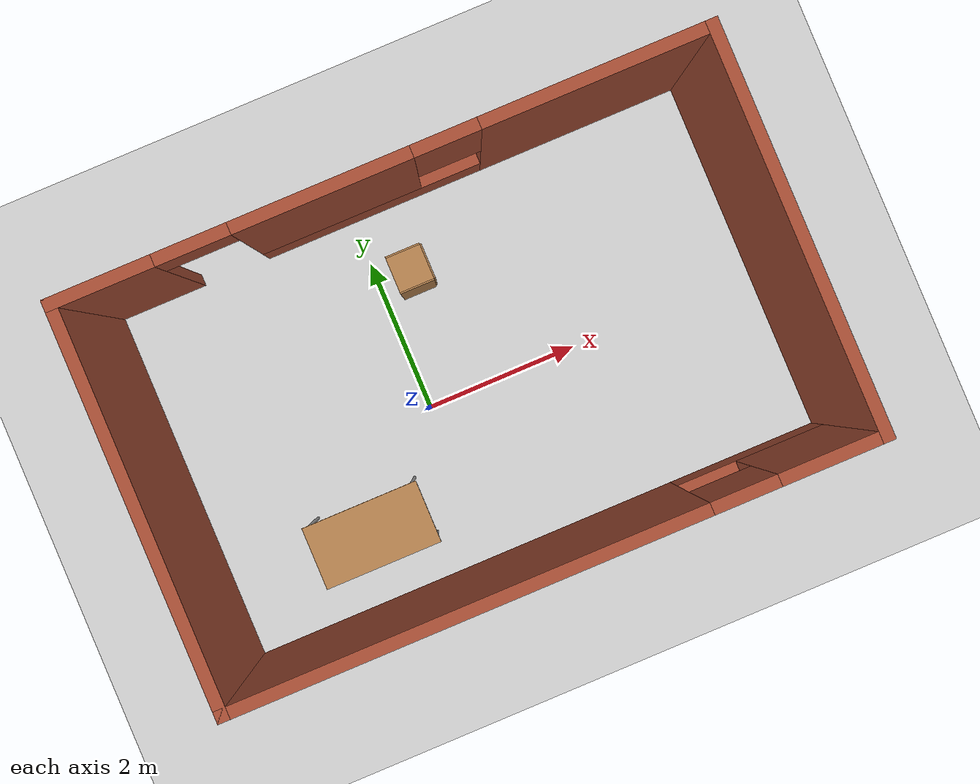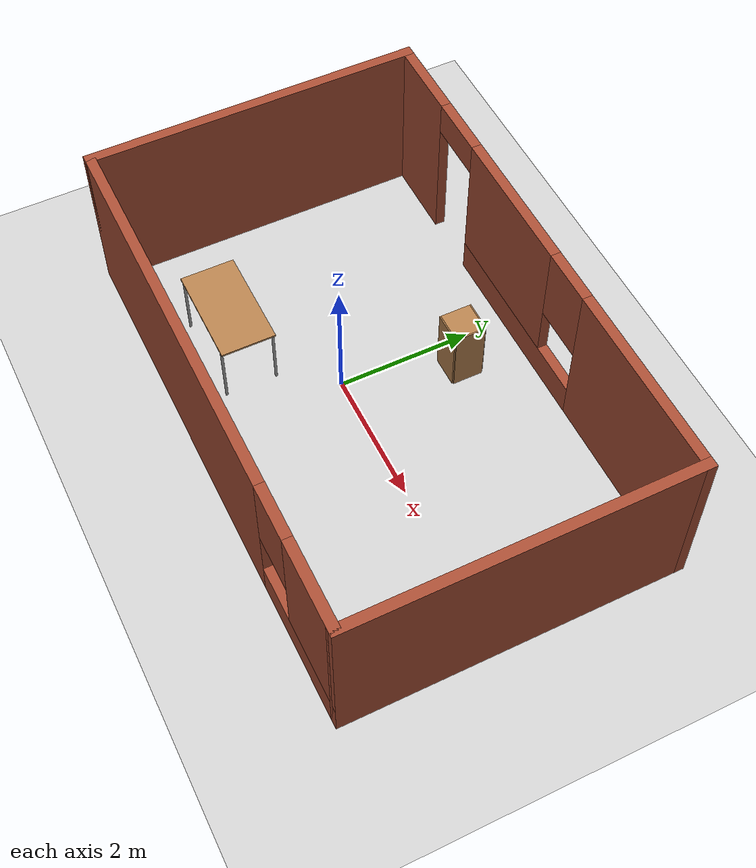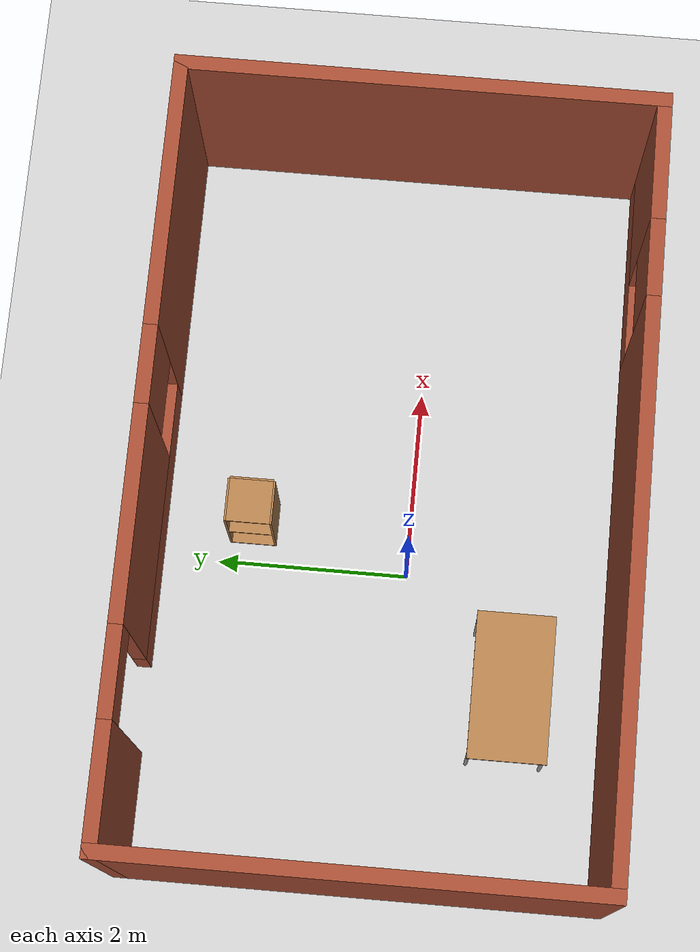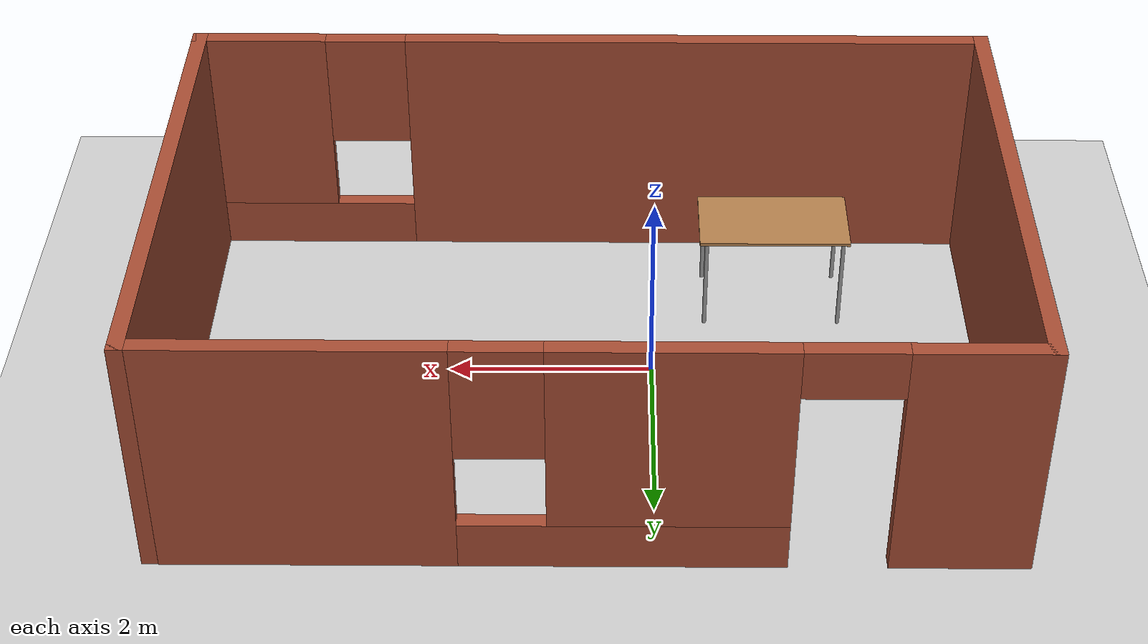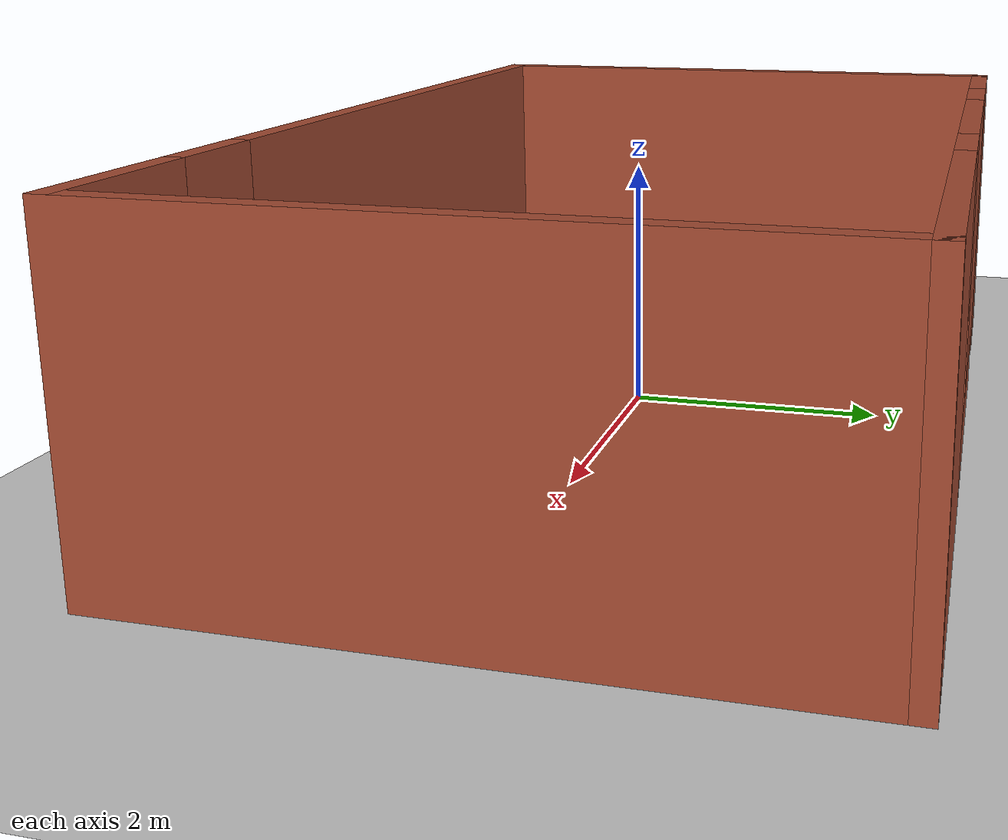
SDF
<sdf version="1.7">
 <world name="default">
  <light name="sun" type="directional">
   <pose>0 0 10 0 -0 0</pose>
   <diffuse>0.8 0.8 0.8 1</diffuse>
   <specular>0.2 0.2 0.2 1</specular>
   <attenuation>
    <range>1000</range>
    <constant>0.9</constant>
    <linear>0.01</linear>
    <quadratic>0.001</quadratic>
   </attenuation>
   <direction>-0.5 0.1 -0.9</direction>
   <spot><inner_angle>0</inner_angle><outer_angle>0</outer_angle><falloff>0</falloff></spot>
  </light>
  <model name="ground_plane">
   <static>1</static>
   <link name="link">
    <collision name="collision">
     <geometry><plane><normal>0 0 1</normal><size>100 100</size></plane></geometry>
     <surface><friction><ode><mu>100</mu><mu2>50</mu2></ode></friction></surface>
    </collision>
    <visual name="visual">
     <cast_shadows>0</cast_shadows>
     <geometry><plane><normal>0 0 1</normal><size>100 100</size></plane></geometry>
     <material>
      <script><uri>file://media/materials/scripts/gazebo.material</uri><name>Gazebo/Grey</name></script>
     </material>
    </visual>
   </link>
  </model>
  <gravity>0 0 -9.8</gravity>
  <magnetic_field>6e-06 2.3e-05 -4.2e-05</magnetic_field>
  <atmosphere type="adiabatic"/>
  <physics type="ode">
   <max_step_size>0.001</max_step_size>
   <real_time_factor>1</real_time_factor>
   <real_time_update_rate>1000</real_time_update_rate>
  </physics>
  <scene><ambient>0.4 0.4 0.4 1</ambient><background>0.7 0.7 0.7 1</background><shadows>1</shadows></scene>
  <audio><device>default</device></audio>
  <spherical_coordinates>
   <surface_model>EARTH_WGS84</surface_model>
   <latitude_deg>0</latitude_deg>
   <longitude_deg>0</longitude_deg>
   <elevation>0</elevation>
   <heading_deg>0</heading_deg>
  </spherical_coordinates>
  <model name="cabinet">
   <static>1</static>
   <link name="cabinet_bottom_plate">
    <inertial>
     <pose>0 0 -1 0 -0 0</pose>
     <inertia><ixx>2.05</ixx><ixy>0</ixy><ixz>0</ixz><iyy>2.05</iyy><iyz>0</iyz><izz>2.05</izz></inertia>
     <mass>25</mass>
    </inertial>
    <collision name="cabinet_bottom_plate_geom">
     <pose>0 0 0.01 0 -0 0</pose>
     <geometry><box><size>0.45 0.45 0.02</size></box></geometry>
    </collision>
    <visual name="cabinet_bottom_plate_geom_visual">
     <pose>0 0 0.01 0 -0 0</pose>
     <geometry><box><size>0.45 0.45 0.02</size></box></geometry>
     <material>
      <script><uri>file://media/materials/scripts/gazebo.material</uri><name>Gazebo/Wood</name></script>
     </material>
    </visual>
    <collision name="cabinet_bottom_plate_geom_cabinet_back_plate">
     <pose>0.235 0 0.51 0 -0 0</pose>
     <geometry><box><size>0.02 0.45 1.02</size></box></geometry>
    </collision>
    <visual name="cabinet_bottom_plate_geom_cabinet_back_plate_visual">
     <pose>0.235 0 0.51 0 -0 0</pose>
     <geometry><box><size>0.02 0.45 1.02</size></box></geometry>
     <material>
      <script><uri>file://media/materials/scripts/gazebo.material</uri><name>Gazebo/Wood</name></script>
     </material>
    </visual>
    <collision name="cabinet_bottom_plate_geom_cabinet_left_plate">
     <pose>0 0.235 0.51 0 -0 0</pose>
     <geometry><box><size>0.45 0.02 1.02</size></box></geometry>
    </collision>
    <visual name="cabinet_bottom_plate_geom_cabinet_left_plate_visual">
     <pose>0 0.235 0.51 0 -0 0</pose>
     <geometry><box><size>0.45 0.02 1.02</size></box></geometry>
     <material>
      <script><uri>file://media/materials/scripts/gazebo.material</uri><name>Gazebo/Wood</name></script>
     </material>
    </visual>
    <collision name="cabinet_bottom_plate_geom_cabinet_middle_plate">
     <pose>0 0 0.51 0 -0 0</pose>
     <geometry><box><size>0.45 0.45 0.02</size></box></geometry>
    </collision>
    <visual name="cabinet_bottom_plate_geom_cabinet_middle_plate_visual">
     <pose>0 0 0.51 0 -0 0</pose>
     <geometry><box><size>0.45 0.45 0.02</size></box></geometry>
     <material>
      <script><uri>file://media/materials/scripts/gazebo.material</uri><name>Gazebo/Wood</name></script>
     </material>
    </visual>
    <collision name="cabinet_bottom_plate_geom_cabinet_right_plate">
     <pose>0 -0.235 0.51 0 -0 0</pose>
     <geometry><box><size>0.45 0.02 1.02</size></box></geometry>
    </collision>
    <visual name="cabinet_bottom_plate_geom_cabinet_right_plate_visual">
     <pose>0 -0.235 0.51 0 -0 0</pose>
     <geometry><box><size>0.45 0.02 1.02</size></box></geometry>
     <material>
      <script><uri>file://media/materials/scripts/gazebo.material</uri><name>Gazebo/Wood</name></script>
     </material>
    </visual>
    <collision name="cabinet_bottom_plate_geom_cabinet_top_plate">
     <pose>0 0 1.01 0 -0 0</pose>
     <geometry><box><size>0.45 0.45 0.02</size></box></geometry>
    </collision>
    <visual name="cabinet_bottom_plate_geom_cabinet_top_plate_visual">
     <pose>0 0 1.01 0 -0 0</pose>
     <geometry><box><size>0.45 0.45 0.02</size></box></geometry>
     <material>
      <script><uri>file://media/materials/scripts/gazebo.material</uri><name>Gazebo/Wood</name></script>
     </material>
    </visual>
   </link>
   <pose>0.451496 1.65442 0 0 -0 0</pose>
  </model>
  <model name="table">
   <static>1</static>
   <link name="link">
    <collision name="surface">
     <pose>0 0 1 0 -0 0</pose>
     <geometry><box><size>1.5 0.8 0.03</size></box></geometry>
     <surface><friction><ode><mu>0.6</mu><mu2>0.6</mu2></ode></friction></surface>
    </collision>
    <visual name="visual1">
     <pose>0 0 1 0 -0 0</pose>
     <geometry><box><size>1.5 0.8 0.03</size></box></geometry>
     <material>
      <script><uri>file://media/materials/scripts/gazebo.material</uri><name>Gazebo/Wood</name></script>
     </material>
    </visual>
    <collision name="front_left_leg">
     <pose>0.68 0.38 0.5 0 -0 0</pose>
     <geometry><cylinder><radius>0.02</radius><length>1</length></cylinder></geometry>
    </collision>
    <visual name="front_left_leg">
     <pose>0.68 0.38 0.5 0 -0 0</pose>
     <geometry><cylinder><radius>0.02</radius><length>1</length></cylinder></geometry>
     <material>
      <script><uri>file://media/materials/scripts/gazebo.material</uri><name>Gazebo/Grey</name></script>
     </material>
    </visual>
    <collision name="front_right_leg">
     <pose>0.68 -0.38 0.5 0 -0 0</pose>
     <geometry><cylinder><radius>0.02</radius><length>1</length></cylinder></geometry>
    </collision>
    <visual name="front_right_leg">
     <pose>0.68 -0.38 0.5 0 -0 0</pose>
     <geometry><cylinder><radius>0.02</radius><length>1</length></cylinder></geometry>
     <material>
      <script><uri>file://media/materials/scripts/gazebo.material</uri><name>Gazebo/Grey</name></script>
     </material>
    </visual>
    <collision name="back_right_leg">
     <pose>-0.68 -0.38 0.5 0 -0 0</pose>
     <geometry><cylinder><radius>0.02</radius><length>1</length></cylinder></geometry>
    </collision>
    <visual name="back_right_leg">
     <pose>-0.68 -0.38 0.5 0 -0 0</pose>
     <geometry><cylinder><radius>0.02</radius><length>1</length></cylinder></geometry>
     <material>
      <script><uri>file://media/materials/scripts/gazebo.material</uri><name>Gazebo/Grey</name></script>
     </material>
    </visual>
    <collision name="back_left_leg">
     <pose>-0.68 0.38 0.5 0 -0 0</pose>
     <geometry><cylinder><radius>0.02</radius><length>1</length></cylinder></geometry>
    </collision>
    <visual name="back_left_leg">
     <pose>-0.68 0.38 0.5 0 -0 0</pose>
     <geometry><cylinder><radius>0.02</radius><length>1</length></cylinder></geometry>
     <material>
      <script><uri>file://media/materials/scripts/gazebo.material</uri><name>Gazebo/Grey</name></script>
     </material>
    </visual>
   </link>
   <pose>-1.23136 -1.14952 0 0 -0 0</pose>
  </model>
  <model name="test">
   <pose>0.62395 0.236194 0 0 -0 0</pose>
   <link name="Wall_2">
    <collision name="Wall_2_Collision">
     <geometry><box><size>5 0.15 2.5</size></box></geometry>
     <pose>0 0 1.25 0 -0 0</pose>
    </collision>
    <visual name="Wall_2_Visual">
     <pose>0 0 1.25 0 -0 0</pose>
     <geometry><box><size>5 0.15 2.5</size></box></geometry>
     <material>
      <script><uri>file://media/materials/scripts/gazebo.material</uri><name>Gazebo/Bricks</name></script>
      <ambient>1 1 1 1</ambient>
     </material>
     <meta><layer>0</layer></meta>
    </visual>
    <pose>-3.925 0 0 0 -0 -1.5708</pose>
   </link>
   <link name="Wall_4">
    <pose>-0 -2.425 0 0 -0 0</pose>
    <visual name="Wall_4_Visual_0">
     <pose>-1.07085 0 1.25 0 -0 0</pose>
     <geometry><box><size>5.85831 0.15 2.5</size></box></geometry>
     <material>
      <script><uri>file://media/materials/scripts/gazebo.material</uri><name>Gazebo/Bricks</name></script>
      <ambient>1 1 1 1</ambient>
     </material>
     <meta><layer>0</layer></meta>
    </visual>
    <collision name="Wall_4_Collision_0">
     <geometry><box><size>5.85831 0.15 2.5</size></box></geometry>
     <pose>-1.07085 0 1.25 0 -0 0</pose>
    </collision>
    <visual name="Wall_4_Visual_1">
     <pose>2.92915 0 0.25 0 -0 0</pose>
     <geometry><box><size>2.14169 0.15 0.5</size></box></geometry>
     <material>
      <script><uri>file://media/materials/scripts/gazebo.material</uri><name>Gazebo/Bricks</name></script>
      <ambient>1 1 1 1</ambient>
     </material>
     <meta><layer>0</layer></meta>
    </visual>
    <collision name="Wall_4_Collision_1">
     <geometry><box><size>2.14169 0.15 0.5</size></box></geometry>
     <pose>2.92915 0 0.25 0 -0 0</pose>
    </collision>
    <visual name="Wall_4_Visual_2">
     <pose>3.32915 0 1.5 0 -0 0</pose>
     <geometry><box><size>1.34169 0.15 2</size></box></geometry>
     <material>
      <script><uri>file://media/materials/scripts/gazebo.material</uri><name>Gazebo/Bricks</name></script>
      <ambient>1 1 1 1</ambient>
     </material>
     <meta><layer>0</layer></meta>
    </visual>
    <collision name="Wall_4_Collision_2">
     <geometry><box><size>1.34169 0.15 2</size></box></geometry>
     <pose>3.32915 0 1.5 0 -0 0</pose>
    </collision>
    <visual name="Wall_4_Visual_3">
     <pose>2.25831 0 1.9 0 -0 0</pose>
     <geometry><box><size>0.8 0.15 1.2</size></box></geometry>
     <material>
      <script><uri>file://media/materials/scripts/gazebo.material</uri><name>Gazebo/Bricks</name></script>
      <ambient>1 1 1 1</ambient>
     </material>
     <meta><layer>0</layer></meta>
    </visual>
    <collision name="Wall_4_Collision_3">
     <geometry><box><size>0.8 0.15 1.2</size></box></geometry>
     <pose>2.25831 0 1.9 0 -0 0</pose>
    </collision>
   </link>
   <link name="Wall_5">
    <collision name="Wall_5_Collision">
     <geometry><box><size>5 0.15 2.5</size></box></geometry>
     <pose>0 0 1.25 0 -0 0</pose>
    </collision>
    <visual name="Wall_5_Visual">
     <pose>0 0 1.25 0 -0 0</pose>
     <geometry><box><size>5 0.15 2.5</size></box></geometry>
     <material>
      <script><uri>file://media/materials/scripts/gazebo.material</uri><name>Gazebo/Bricks</name></script>
      <ambient>1 1 1 1</ambient>
     </material>
     <meta><layer>0</layer></meta>
    </visual>
    <pose>3.925 0 0 0 -0 1.5708</pose>
   </link>
   <link name="Wall_6">
    <pose>-0 2.425 0 0 -0 3.14159</pose>
    <visual name="Wall_6_Visual_0">
     <pose>-2.57632 0 1.25 0 -0 0</pose>
     <geometry><box><size>2.84736 0.15 2.5</size></box></geometry>
     <material>
      <script><uri>file://media/materials/scripts/gazebo.material</uri><name>Gazebo/Bricks</name></script>
      <ambient>1 1 1 1</ambient>
     </material>
     <meta><layer>0</layer></meta>
    </visual>
    <collision name="Wall_6_Collision_0">
     <geometry><box><size>2.84736 0.15 2.5</size></box></geometry>
     <pose>-2.57632 0 1.25 0 -0 0</pose>
    </collision>
    <visual name="Wall_6_Visual_1">
     <pose>3.35435 0 1.25 0 -0 0</pose>
     <geometry><box><size>1.29131 0.15 2.5</size></box></geometry>
     <material>
      <script><uri>file://media/materials/scripts/gazebo.material</uri><name>Gazebo/Bricks</name></script>
      <ambient>1 1 1 1</ambient>
     </material>
     <meta><layer>0</layer></meta>
    </visual>
    <collision name="Wall_6_Collision_1">
     <geometry><box><size>1.29131 0.15 2.5</size></box></geometry>
     <pose>3.35435 0 1.25 0 -0 0</pose>
    </collision>
    <visual name="Wall_6_Visual_2">
     <pose>0.328026 0 0.25 0 -0 0</pose>
     <geometry><box><size>2.96133 0.15 0.5</size></box></geometry>
     <material>
      <script><uri>file://media/materials/scripts/gazebo.material</uri><name>Gazebo/Bricks</name></script>
      <ambient>1 1 1 1</ambient>
     </material>
     <meta><layer>0</layer></meta>
    </visual>
    <collision name="Wall_6_Collision_2">
     <geometry><box><size>2.96133 0.15 0.5</size></box></geometry>
     <pose>0.328026 0 0.25 0 -0 0</pose>
    </collision>
    <visual name="Wall_6_Visual_3">
     <pose>0.728026 0 1.5 0 -0 0</pose>
     <geometry><box><size>2.16133 0.15 2</size></box></geometry>
     <material>
      <script><uri>file://media/materials/scripts/gazebo.material</uri><name>Gazebo/Bricks</name></script>
      <ambient>1 1 1 1</ambient>
     </material>
     <meta><layer>0</layer></meta>
    </visual>
    <collision name="Wall_6_Collision_3">
     <geometry><box><size>2.16133 0.15 2</size></box></geometry>
     <pose>0.728026 0 1.5 0 -0 0</pose>
    </collision>
    <visual name="Wall_6_Visual_4">
     <pose>-0.75264 0 1.9 0 -0 0</pose>
     <geometry><box><size>0.8 0.15 1.2</size></box></geometry>
     <material>
      <script><uri>file://media/materials/scripts/gazebo.material</uri><name>Gazebo/Bricks</name></script>
      <ambient>1 1 1 1</ambient>
     </material>
     <meta><layer>0</layer></meta>
    </visual>
    <collision name="Wall_6_Collision_4">
     <geometry><box><size>0.8 0.15 1.2</size></box></geometry>
     <pose>-0.75264 0 1.9 0 -0 0</pose>
    </collision>
    <visual name="Wall_6_Visual_5">
     <pose>2.25869 0 2.25 0 -0 0</pose>
     <geometry><box><size>0.9 0.15 0.5</size></box></geometry>
     <material>
      <script><uri>file://media/materials/scripts/gazebo.material</uri><name>Gazebo/Bricks</name></script>
      <ambient>1 1 1 1</ambient>
     </material>
     <meta><layer>0</layer></meta>
    </visual>
    <collision name="Wall_6_Collision_5">
     <geometry><box><size>0.9 0.15 0.5</size></box></geometry>
     <pose>2.25869 0 2.25 0 -0 0</pose>
    </collision>
   </link>
   <static>1</static>
  </model>
 </world>
</sdf>
